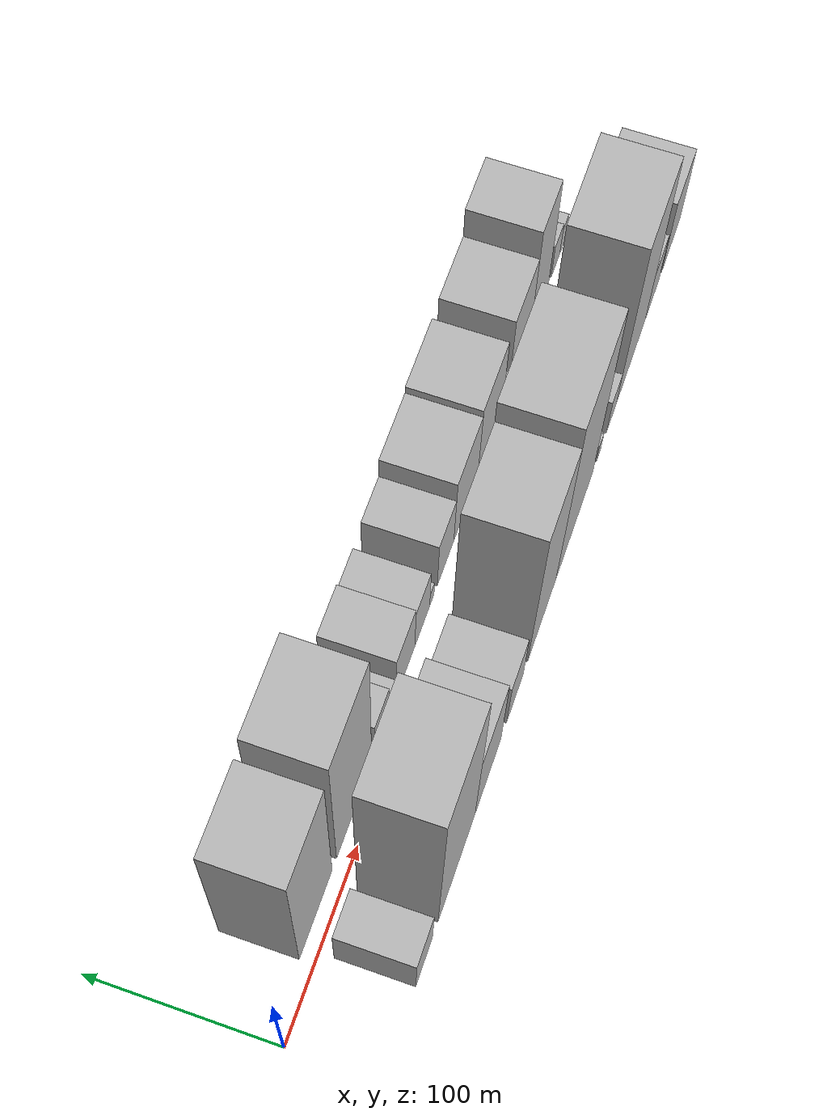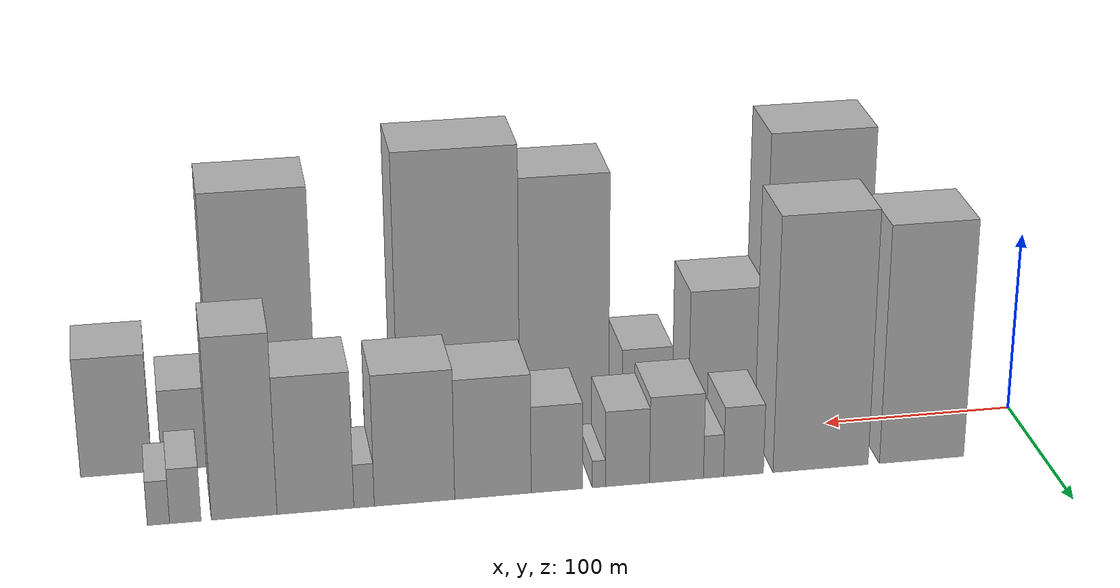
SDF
<sdf version="1.6">
 <world name="default">
  <scene>
   <sky><clouds><speed>12</speed></clouds></sky>
   <ambient>0.4 0.4 0.4 1</ambient>
   <background>0.7 0.7 0.7 1</background>
   <shadows>1</shadows>
  </scene>
  <gravity>0 0 -9.8066</gravity>
  <magnetic_field>6e-06 2.3e-05 -4.2e-05</magnetic_field>
  <physics default="0" name="default_physics" type="ode">
   <ode>
    <solver>
     <type>quick</type>
     <iters>10</iters>
     <sor>1.0</sor>
     <use_dynamic_moi_rescaling>0</use_dynamic_moi_rescaling>
    </solver>
    <constraints>
     <cfm>0</cfm>
     <erp>0.2</erp>
     <contact_max_correcting_vel>100</contact_max_correcting_vel>
     <contact_surface_layer>0.001</contact_surface_layer>
    </constraints>
   </ode>
   <max_step_size>0.004</max_step_size>
   <real_time_factor>1</real_time_factor>
   <real_time_update_rate>250</real_time_update_rate>
  </physics>
  <light name="sun" type="directional">
   <pose>0 0 10 0 0 0</pose>
   <diffuse>0.8 0.8 0.8 1</diffuse>
   <specular>0.2 0.2 0.2 1</specular>
   <attenuation>
    <range>1000</range>
    <constant>0.9</constant>
    <linear>0.01</linear>
    <quadratic>0.001</quadratic>
   </attenuation>
   <direction>-0.5 0.1 -0.9</direction>
  </light>
  <model name="building_1">
   <static>1</static>
   <pose>62.2926 27.5000 0 0.000000 0.000000 1.570796</pose>
   <link name="link">
    <pose>0 0 66.00 0 0 0</pose>
    <collision name="collision"><geometry><box><size>40.0000 44.5851 132.0000</size></box></geometry></collision>
    <visual name="visual">
     <cast_shadows>0</cast_shadows>
     <geometry><box><size>40.0000 44.5851 132.0000</size></box></geometry>
     <material>
      <script>
       <uri>model://HANNAS_wall/materials/scripts</uri>
       <uri>model://HANNAS_wall/materials/textures</uri>
       <name>vrc/HANNAS_wall</name>
      </script>
     </material>
    </visual>
   </link>
  </model>
  <model name="building_2">
   <static>1</static>
   <pose>115.4744 27.5000 0 0.000000 0.000000 1.570796</pose>
   <link name="link">
    <pose>0 0 70.50 0 0 0</pose>
    <collision name="collision"><geometry><box><size>40.0000 49.7785 141.0000</size></box></geometry></collision>
    <visual name="visual">
     <cast_shadows>0</cast_shadows>
     <geometry><box><size>40.0000 49.7785 141.0000</size></box></geometry>
     <material>
      <script>
       <uri>model://HANNAS_wall/materials/scripts</uri>
       <uri>model://HANNAS_wall/materials/textures</uri>
       <name>vrc/HANNAS_wall</name>
      </script>
     </material>
    </visual>
   </link>
  </model>
  <model name="building_3">
   <static>1</static>
   <pose>155.6836 27.5000 0 0.000000 0.000000 1.570796</pose>
   <link name="link">
    <pose>0 0 19.50 0 0 0</pose>
    <collision name="collision"><geometry><box><size>40.0000 20.6399 39.0000</size></box></geometry></collision>
    <visual name="visual">
     <cast_shadows>0</cast_shadows>
     <geometry><box><size>40.0000 20.6399 39.0000</size></box></geometry>
     <material>
      <script>
       <uri>model://HANNAS_wall/materials/scripts</uri>
       <uri>model://HANNAS_wall/materials/textures</uri>
       <name>vrc/HANNAS_wall</name>
      </script>
     </material>
    </visual>
   </link>
  </model>
  <model name="building_4">
   <static>1</static>
   <pose>171.1858 27.5000 0 0.000000 0.000000 1.570796</pose>
   <link name="link">
    <pose>0 0 12.00 0 0 0</pose>
    <collision name="collision"><geometry><box><size>40.0000 10.3644 24.0000</size></box></geometry></collision>
    <visual name="visual">
     <cast_shadows>0</cast_shadows>
     <geometry><box><size>40.0000 10.3644 24.0000</size></box></geometry>
     <material>
      <script>
       <uri>model://HANNAS_wall/materials/scripts</uri>
       <uri>model://HANNAS_wall/materials/textures</uri>
       <name>vrc/HANNAS_wall</name>
      </script>
     </material>
    </visual>
   </link>
  </model>
  <model name="building_5">
   <static>1</static>
   <pose>190.2674 27.5000 0 0.000000 0.000000 1.570796</pose>
   <link name="link">
    <pose>0 0 24.00 0 0 0</pose>
    <collision name="collision"><geometry><box><size>40.0000 27.7987 48.0000</size></box></geometry></collision>
    <visual name="visual">
     <cast_shadows>0</cast_shadows>
     <geometry><box><size>40.0000 27.7987 48.0000</size></box></geometry>
     <material>
      <script>
       <uri>model://HANNAS_wall/materials/scripts</uri>
       <uri>model://HANNAS_wall/materials/textures</uri>
       <name>vrc/HANNAS_wall</name>
      </script>
     </material>
    </visual>
   </link>
  </model>
  <model name="building_6">
   <static>1</static>
   <pose>215.4384 27.5000 0 0.000000 0.000000 1.570796</pose>
   <link name="link">
    <pose>0 0 21.00 0 0 0</pose>
    <collision name="collision"><geometry><box><size>40.0000 22.5434 42.0000</size></box></geometry></collision>
    <visual name="visual">
     <cast_shadows>0</cast_shadows>
     <geometry><box><size>40.0000 22.5434 42.0000</size></box></geometry>
     <material>
      <script>
       <uri>model://HANNAS_wall/materials/scripts</uri>
       <uri>model://HANNAS_wall/materials/textures</uri>
       <name>vrc/HANNAS_wall</name>
      </script>
     </material>
    </visual>
   </link>
  </model>
  <model name="building_7">
   <static>1</static>
   <pose>230.0436 27.5000 0 0.000000 0.000000 1.570796</pose>
   <link name="link">
    <pose>0 0 7.50 0 0 0</pose>
    <collision name="collision"><geometry><box><size>40.0000 6.6670 15.0000</size></box></geometry></collision>
    <visual name="visual">
     <cast_shadows>0</cast_shadows>
     <geometry><box><size>40.0000 6.6670 15.0000</size></box></geometry>
     <material>
      <script>
       <uri>model://HANNAS_wall/materials/scripts</uri>
       <uri>model://HANNAS_wall/materials/textures</uri>
       <name>vrc/HANNAS_wall</name>
      </script>
     </material>
    </visual>
   </link>
  </model>
  <model name="building_8">
   <static>1</static>
   <pose>251.4004 27.5000 0 0.000000 0.000000 1.570796</pose>
   <link name="link">
    <pose>0 0 24.00 0 0 0</pose>
    <collision name="collision"><geometry><box><size>40.0000 26.0466 48.0000</size></box></geometry></collision>
    <visual name="visual">
     <cast_shadows>0</cast_shadows>
     <geometry><box><size>40.0000 26.0466 48.0000</size></box></geometry>
     <material>
      <script>
       <uri>model://HANNAS_wall/materials/scripts</uri>
       <uri>model://HANNAS_wall/materials/textures</uri>
       <name>vrc/HANNAS_wall</name>
      </script>
     </material>
    </visual>
   </link>
  </model>
  <model name="building_9">
   <static>1</static>
   <pose>283.6689 27.5000 0 0.000000 0.000000 1.570796</pose>
   <link name="link">
    <pose>0 0 33.00 0 0 0</pose>
    <collision name="collision"><geometry><box><size>40.0000 38.4903 66.0000</size></box></geometry></collision>
    <visual name="visual">
     <cast_shadows>0</cast_shadows>
     <geometry><box><size>40.0000 38.4903 66.0000</size></box></geometry>
     <material>
      <script>
       <uri>model://HANNAS_wall/materials/scripts</uri>
       <uri>model://HANNAS_wall/materials/textures</uri>
       <name>vrc/HANNAS_wall</name>
      </script>
     </material>
    </visual>
   </link>
  </model>
  <model name="building_10">
   <static>1</static>
   <pose>322.9542 27.5000 0 0.000000 0.000000 1.570796</pose>
   <link name="link">
    <pose>0 0 36.00 0 0 0</pose>
    <collision name="collision"><geometry><box><size>40.0000 40.0803 72.0000</size></box></geometry></collision>
    <visual name="visual">
     <cast_shadows>0</cast_shadows>
     <geometry><box><size>40.0000 40.0803 72.0000</size></box></geometry>
     <material>
      <script>
       <uri>model://HANNAS_wall/materials/scripts</uri>
       <uri>model://HANNAS_wall/materials/textures</uri>
       <name>vrc/HANNAS_wall</name>
      </script>
     </material>
    </visual>
   </link>
  </model>
  <model name="building_11">
   <static>1</static>
   <pose>348.0448 27.5000 0 0.000000 0.000000 1.570796</pose>
   <link name="link">
    <pose>0 0 12.00 0 0 0</pose>
    <collision name="collision"><geometry><box><size>40.0000 10.1010 24.0000</size></box></geometry></collision>
    <visual name="visual">
     <cast_shadows>0</cast_shadows>
     <geometry><box><size>40.0000 10.1010 24.0000</size></box></geometry>
     <material>
      <script>
       <uri>model://HANNAS_wall/materials/scripts</uri>
       <uri>model://HANNAS_wall/materials/textures</uri>
       <name>vrc/HANNAS_wall</name>
      </script>
     </material>
    </visual>
   </link>
  </model>
  <model name="building_12">
   <static>1</static>
   <pose>372.0215 27.5000 0 0.000000 0.000000 1.570796</pose>
   <link name="link">
    <pose>0 0 37.50 0 0 0</pose>
    <collision name="collision"><geometry><box><size>40.0000 37.8523 75.0000</size></box></geometry></collision>
    <visual name="visual">
     <cast_shadows>0</cast_shadows>
     <geometry><box><size>40.0000 37.8523 75.0000</size></box></geometry>
     <material>
      <script>
       <uri>model://HANNAS_wall/materials/scripts</uri>
       <uri>model://HANNAS_wall/materials/textures</uri>
       <name>vrc/HANNAS_wall</name>
      </script>
     </material>
    </visual>
   </link>
  </model>
  <model name="building_13">
   <static>1</static>
   <pose>407.0138 27.5000 0 0.000000 0.000000 1.570796</pose>
   <link name="link">
    <pose>0 0 49.50 0 0 0</pose>
    <collision name="collision"><geometry><box><size>40.0000 32.1323 99.0000</size></box></geometry></collision>
    <visual name="visual">
     <cast_shadows>0</cast_shadows>
     <geometry><box><size>40.0000 32.1323 99.0000</size></box></geometry>
     <material>
      <script>
       <uri>model://HANNAS_wall/materials/scripts</uri>
       <uri>model://HANNAS_wall/materials/textures</uri>
       <name>vrc/HANNAS_wall</name>
      </script>
     </material>
    </visual>
   </link>
  </model>
  <model name="building_14">
   <static>1</static>
   <pose>435.7087 27.5000 0 0.000000 0.000000 1.570796</pose>
   <link name="link">
    <pose>0 0 15.00 0 0 0</pose>
    <collision name="collision"><geometry><box><size>40.0000 15.2576 30.0000</size></box></geometry></collision>
    <visual name="visual">
     <cast_shadows>0</cast_shadows>
     <geometry><box><size>40.0000 15.2576 30.0000</size></box></geometry>
     <material>
      <script>
       <uri>model://HANNAS_wall/materials/scripts</uri>
       <uri>model://HANNAS_wall/materials/textures</uri>
       <name>vrc/HANNAS_wall</name>
      </script>
     </material>
    </visual>
   </link>
  </model>
  <model name="building_15">
   <static>1</static>
   <pose>448.7269 27.5000 0 0.000000 0.000000 1.570796</pose>
   <link name="link">
    <pose>0 0 12.00 0 0 0</pose>
    <collision name="collision"><geometry><box><size>40.0000 10.7787 24.0000</size></box></geometry></collision>
    <visual name="visual">
     <cast_shadows>0</cast_shadows>
     <geometry><box><size>40.0000 10.7787 24.0000</size></box></geometry>
     <material>
      <script>
       <uri>model://HANNAS_wall/materials/scripts</uri>
       <uri>model://HANNAS_wall/materials/textures</uri>
       <name>vrc/HANNAS_wall</name>
      </script>
     </material>
    </visual>
   </link>
  </model>
  <model name="building_16">
   <static>1</static>
   <pose>57.9200 -27.5000 0 0.000000 0.000000 1.570796</pose>
   <link name="link">
    <pose>0 0 21.00 0 0 0</pose>
    <collision name="collision"><geometry><box><size>40.0000 23.8399 42.0000</size></box></geometry></collision>
    <visual name="visual">
     <cast_shadows>0</cast_shadows>
     <geometry><box><size>40.0000 23.8399 42.0000</size></box></geometry>
     <material>
      <script>
       <uri>model://HANNAS_wall/materials/scripts</uri>
       <uri>model://HANNAS_wall/materials/textures</uri>
       <name>vrc/HANNAS_wall</name>
      </script>
     </material>
    </visual>
   </link>
  </model>
  <model name="building_17">
   <static>1</static>
   <pose>105.3323 -27.5000 0 0.000000 0.000000 1.570796</pose>
   <link name="link">
    <pose>0 0 81.00 0 0 0</pose>
    <collision name="collision"><geometry><box><size>40.0000 54.9848 162.0000</size></box></geometry></collision>
    <visual name="visual">
     <cast_shadows>0</cast_shadows>
     <geometry><box><size>40.0000 54.9848 162.0000</size></box></geometry>
     <material>
      <script>
       <uri>model://HANNAS_wall/materials/scripts</uri>
       <uri>model://HANNAS_wall/materials/textures</uri>
       <name>vrc/HANNAS_wall</name>
      </script>
     </material>
    </visual>
   </link>
  </model>
  <model name="building_18">
   <static>1</static>
   <pose>152.6068 -27.5000 0 0.000000 0.000000 1.570796</pose>
   <link name="link">
    <pose>0 0 39.00 0 0 0</pose>
    <collision name="collision"><geometry><box><size>40.0000 39.5641 78.0000</size></box></geometry></collision>
    <visual name="visual">
     <cast_shadows>0</cast_shadows>
     <geometry><box><size>40.0000 39.5641 78.0000</size></box></geometry>
     <material>
      <script>
       <uri>model://HANNAS_wall/materials/scripts</uri>
       <uri>model://HANNAS_wall/materials/textures</uri>
       <name>vrc/HANNAS_wall</name>
      </script>
     </material>
    </visual>
   </link>
  </model>
  <model name="building_19">
   <static>1</static>
   <pose>194.6036 -27.5000 0 0.000000 0.000000 1.570796</pose>
   <link name="link">
    <pose>0 0 24.00 0 0 0</pose>
    <collision name="collision"><geometry><box><size>40.0000 26.4297 48.0000</size></box></geometry></collision>
    <visual name="visual">
     <cast_shadows>0</cast_shadows>
     <geometry><box><size>40.0000 26.4297 48.0000</size></box></geometry>
     <material>
      <script>
       <uri>model://HANNAS_wall/materials/scripts</uri>
       <uri>model://HANNAS_wall/materials/textures</uri>
       <name>vrc/HANNAS_wall</name>
      </script>
     </material>
    </visual>
   </link>
  </model>
  <model name="building_20">
   <static>1</static>
   <pose>238.1781 -27.5000 0 0.000000 0.000000 1.570796</pose>
   <link name="link">
    <pose>0 0 73.50 0 0 0</pose>
    <collision name="collision"><geometry><box><size>40.0000 46.7192 147.0000</size></box></geometry></collision>
    <visual name="visual">
     <cast_shadows>0</cast_shadows>
     <geometry><box><size>40.0000 46.7192 147.0000</size></box></geometry>
     <material>
      <script>
       <uri>model://HANNAS_wall/materials/scripts</uri>
       <uri>model://HANNAS_wall/materials/textures</uri>
       <name>vrc/HANNAS_wall</name>
      </script>
     </material>
    </visual>
   </link>
  </model>
  <model name="building_21">
   <static>1</static>
   <pose>293.0962 -27.5000 0 0.000000 0.000000 1.570796</pose>
   <link name="link">
    <pose>0 0 82.50 0 0 0</pose>
    <collision name="collision"><geometry><box><size>40.0000 63.1172 165.0000</size></box></geometry></collision>
    <visual name="visual">
     <cast_shadows>0</cast_shadows>
     <geometry><box><size>40.0000 63.1172 165.0000</size></box></geometry>
     <material>
      <script>
       <uri>model://HANNAS_wall/materials/scripts</uri>
       <uri>model://HANNAS_wall/materials/textures</uri>
       <name>vrc/HANNAS_wall</name>
      </script>
     </material>
    </visual>
   </link>
  </model>
  <model name="building_22">
   <static>1</static>
   <pose>334.5513 -27.5000 0 0.000000 0.000000 1.570796</pose>
   <link name="link">
    <pose>0 0 9.00 0 0 0</pose>
    <collision name="collision"><geometry><box><size>40.0000 7.7930 18.0000</size></box></geometry></collision>
    <visual name="visual">
     <cast_shadows>0</cast_shadows>
     <geometry><box><size>40.0000 7.7930 18.0000</size></box></geometry>
     <material>
      <script>
       <uri>model://HANNAS_wall/materials/scripts</uri>
       <uri>model://HANNAS_wall/materials/textures</uri>
       <name>vrc/HANNAS_wall</name>
      </script>
     </material>
    </visual>
   </link>
  </model>
  <model name="building_23">
   <static>1</static>
   <pose>357.2785 -27.5000 0 0.000000 0.000000 1.570796</pose>
   <link name="link">
    <pose>0 0 16.50 0 0 0</pose>
    <collision name="collision"><geometry><box><size>40.0000 17.6613 33.0000</size></box></geometry></collision>
    <visual name="visual">
     <cast_shadows>0</cast_shadows>
     <geometry><box><size>40.0000 17.6613 33.0000</size></box></geometry>
     <material>
      <script>
       <uri>model://HANNAS_wall/materials/scripts</uri>
       <uri>model://HANNAS_wall/materials/textures</uri>
       <name>vrc/HANNAS_wall</name>
      </script>
     </material>
    </visual>
   </link>
  </model>
  <model name="building_24">
   <static>1</static>
   <pose>392.7912 -27.5000 0 0.000000 0.000000 1.570796</pose>
   <link name="link">
    <pose>0 0 75.00 0 0 0</pose>
    <collision name="collision"><geometry><box><size>40.0000 53.3642 150.0000</size></box></geometry></collision>
    <visual name="visual">
     <cast_shadows>0</cast_shadows>
     <geometry><box><size>40.0000 53.3642 150.0000</size></box></geometry>
     <material>
      <script>
       <uri>model://HANNAS_wall/materials/scripts</uri>
       <uri>model://HANNAS_wall/materials/textures</uri>
       <name>vrc/HANNAS_wall</name>
      </script>
     </material>
    </visual>
   </link>
  </model>
  <model name="building_25">
   <static>1</static>
   <pose>432.3809 -27.5000 0 0.000000 0.000000 1.570796</pose>
   <link name="link">
    <pose>0 0 22.50 0 0 0</pose>
    <collision name="collision"><geometry><box><size>40.0000 25.8152 45.0000</size></box></geometry></collision>
    <visual name="visual">
     <cast_shadows>0</cast_shadows>
     <geometry><box><size>40.0000 25.8152 45.0000</size></box></geometry>
     <material>
      <script>
       <uri>model://HANNAS_wall/materials/scripts</uri>
       <uri>model://HANNAS_wall/materials/textures</uri>
       <name>vrc/HANNAS_wall</name>
      </script>
     </material>
    </visual>
   </link>
  </model>
  <model name="building_26">
   <static>1</static>
   <pose>468.1121 -27.5000 0 0.000000 0.000000 1.570796</pose>
   <link name="link">
    <pose>0 0 33.00 0 0 0</pose>
    <collision name="collision"><geometry><box><size>40.0000 35.6474 66.0000</size></box></geometry></collision>
    <visual name="visual">
     <cast_shadows>0</cast_shadows>
     <geometry><box><size>40.0000 35.6474 66.0000</size></box></geometry>
     <material>
      <script>
       <uri>model://HANNAS_wall/materials/scripts</uri>
       <uri>model://HANNAS_wall/materials/textures</uri>
       <name>vrc/HANNAS_wall</name>
      </script>
     </material>
    </visual>
   </link>
  </model>
 </world>
</sdf>
